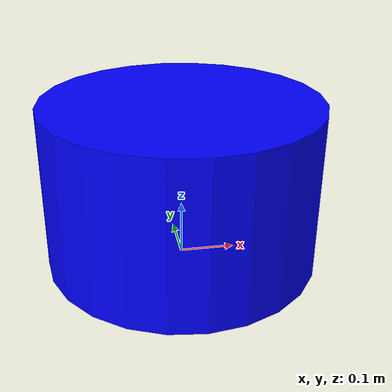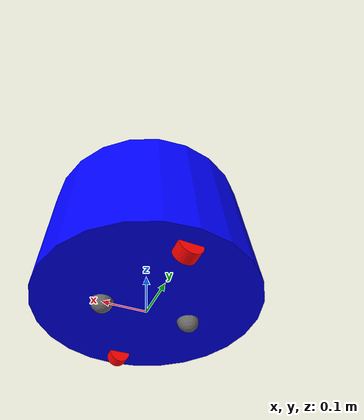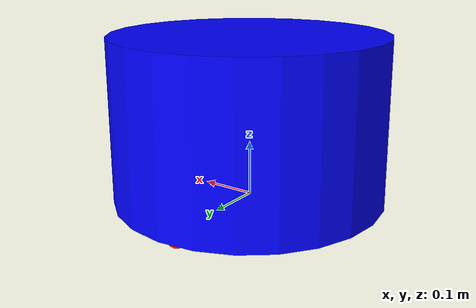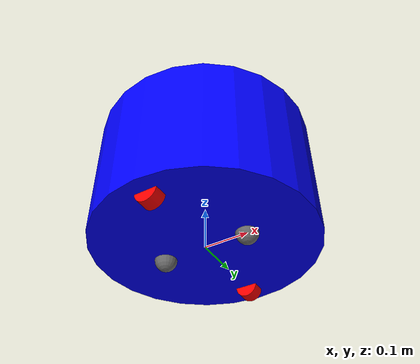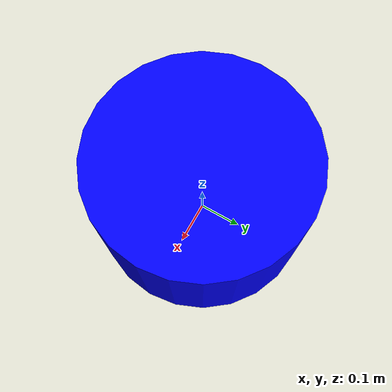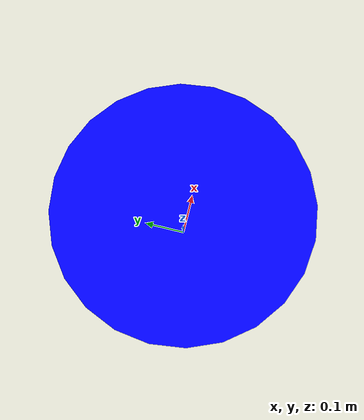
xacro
<?xml version="1.0" ?>

<robot name="robot" xmlns:xacro="http://www.ros.org/wiki/xacro">

    <xacro:include filename="$(find my_rb1_description)/urdf/my_rb1_robot.gazebo" />

    <!-- Define materials for visualization -->
    <material name="blue">
        <color rgba="0 0 1 1"/>
    </material>

    <material name="gray">
        <color rgba="0.40 0.40 0.40 1"/>
    </material>

    <material name="red">
        <color rgba="1 0 0 1"/>
    </material>

    <!-- Base footprint link -->
    <link name="base_footprint">
    </link>

    <!-- Joint connecting base_link and base_footprint -->
    <joint name="base_link_plate_joint" type="fixed">
        <origin rpy="0 0 0" xyz="0 0 0.15" />
        <parent link="base_footprint" />
        <child link="base_link" />
    </joint>

    <!-- Base link -->
    <link name="base_link">
        <!-- Visual representation of the base link -->
        <visual>
            <origin xyz="0 0 0" rpy="0 0 0"/>
            <geometry>
                <cylinder radius="0.25" length="0.3"/>
            </geometry>
            <material name="blue"/>
        </visual>
        <!-- Collision representation of the base link -->
        <collision>
            <origin xyz="0 0 0" rpy="0 0 0"/>
            <geometry>
                <cylinder radius="0.25" length="0.3"/>
            </geometry>
        </collision>
        <!-- Inertial properties of the base link -->
        <inertial>
            <mass value="20.5" />
            <origin xyz="0 0 0" rpy="0 0 0" />
            <inertia ixx="0.47406249999999994" ixy="0.0" ixz="0.0" iyy="0.47406249999999994" iyz="0.0" izz="0.640625" />
        </inertial>
    </link>

    <!-- Left wheel link -->
    <link name="left_wheel">
        <!-- Visual representation of the left wheel -->
        <visual>
            <origin xyz="0 0 0" rpy="-1.575 0 0"/>
            <geometry>
                <cylinder radius="0.025" length="0.03"/>
            </geometry>
            <material name="red"/>
        </visual>
        <!-- Collision representation of the left wheel -->
        <collision>
            <origin xyz="0 0 0" rpy="-1.575 0 0"/>
            <geometry>
                <cylinder radius="0.025" length="0.03"/>
            </geometry>
        </collision>
        <!-- Inertial properties of the left wheel -->
        <inertial>
            <mass value="1.5" />
            <origin xyz="0 0 0" rpy="-1.575 0 0" />
            <inertia ixx="0.00034687500000000007" ixy="0.0" ixz="0.0" iyy="0.00034687500000000007" iyz="0.0" izz="0.0004687500000000001" />
        </inertial>
    </link>

    <!-- Joint connecting base_link and left_wheel -->
    <joint name="base_link_left_wheel_joint" type="continuous">
        <axis xyz="0 1 0" rpy="0 0 0" />
        <origin rpy="0 0 0" xyz="0 0.2 -0.15" />
        <parent link="base_link" />
        <child link="left_wheel" />
    </joint>

    <!-- Right wheel link -->
    <link name="right_wheel">
        <!-- Visual representation of the right wheel -->
        <visual>
            <origin xyz="0 0 0" rpy="-1.575 0 0"/>
            <geometry>
                <cylinder radius="0.025" length="0.03"/>
            </geometry>
            <material name="red"/>
        </visual>
        <!-- Collision representation of the right wheel -->
        <collision>
            <origin xyz="0 0 0" rpy="-1.575 0 0"/>
            <geometry>
                <cylinder radius="0.025" length="0.03"/>
            </geometry>
        </collision>
        <!-- Inertial properties of the right wheel -->
        <inertial>
            <mass value="1.5" />
            <origin xyz="0 0 0" rpy="-1.575 0 0" />
            <inertia ixx="0.00034687500000000007" ixy="0.0" ixz="0.0" iyy="0.00034687500000000007" iyz="0.0" izz="0.0004687500000000001" />
        </inertial>
    </link>

    <!-- Joint connecting base_link and right_wheel -->
    <joint name="base_link_right_wheel_joint" type="continuous">
        <axis xyz="0 1 0" rpy="0 0 0" />
        <origin rpy="0 0 0" xyz="0 -0.2 -0.15" />
        <parent link="base_link" />
        <child link="right_wheel" />
    </joint>

    <!-- Link representing the front caster wheel -->
    <link name="front_caster">
        <visual>
            <origin xyz="0 0 0" rpy="0 0 0" />
            <geometry>
                <sphere radius="0.025" />
            </geometry>
            <material name="gray"/>
        </visual>
        <collision>
            <origin xyz="0 0 0" rpy="0 0 0" />
            <contact_coefficients mu="0.0" kp="0.0" kd="0.0" />
            <geometry>
                <sphere radius="0.025" />
            </geometry>
        </collision>
        <inertial>
            <mass value="0.5" />
            <origin xyz="0 0 0" rpy="0 0 0" />
            <inertia ixx="0.00012500000000000003" ixy="0.0" ixz="0.0" iyy="0.00012500000000000003" iyz="0.0" izz="0.00012500000000000003" />
        </inertial>
    </link>

    <!-- Joint connecting base_link and front_caster -->
    <joint name="base_link_front_caster_joint" type="fixed">
        <parent link="base_link"/>
        <child link="front_caster"/>
        <origin xyz="0.1 0.0 -0.15" rpy="0 0 0"/>
    </joint>

    <!-- Link representing the back caster wheel -->
    <link name="back_caster">
        <visual>
            <origin xyz="0 0 0" rpy="0 0 0" />
            <geometry>
                <sphere radius="0.025" />
            </geometry>
            <material name="gray"/>
        </visual>
        <collision>
            <origin xyz="0 0 0" rpy="0 0 0" />
            <contact_coefficients mu="0.0" kp="0.0" kd="0.0" />
            <geometry>
                <sphere radius="0.025" />
            </geometry>
        </collision>
        <inertial>
            <mass value="0.5" />
            <origin xyz="0 0 0" rpy="0 0 0" />
            <inertia ixx="0.00012500000000000003" ixy="0.0" ixz="0.0" iyy="0.00012500000000000003" iyz="0.0" izz="0.00012500000000000003" />
        </inertial>
    </link>

    <!-- Joint connecting base_link and back_caster -->
    <joint name="base_link_back_caster_joint" type="fixed">
        <parent link="base_link"/>
        <child link="back_caster"/>
        <origin xyz="-0.1 0.0 -0.15" rpy="0 0 0"/>
    </joint>

    <!-- Link representing the laser -->
    <link name="front_laser">
    </link>

    <!-- Joint connecting base_link and front_laser -->
    <joint name="base_link_front_laser_joint" type="fixed">
        <origin rpy="3.14 0 0" xyz="0.25 0 0.075" />
        <parent link="base_link" />
        <child link="front_laser" />
    </joint>
</robot>
